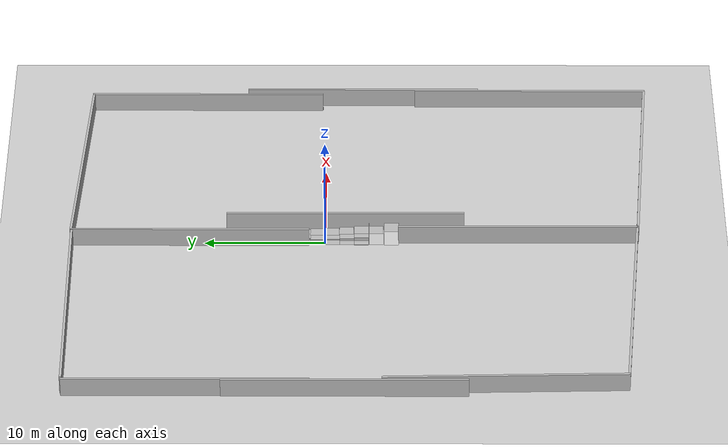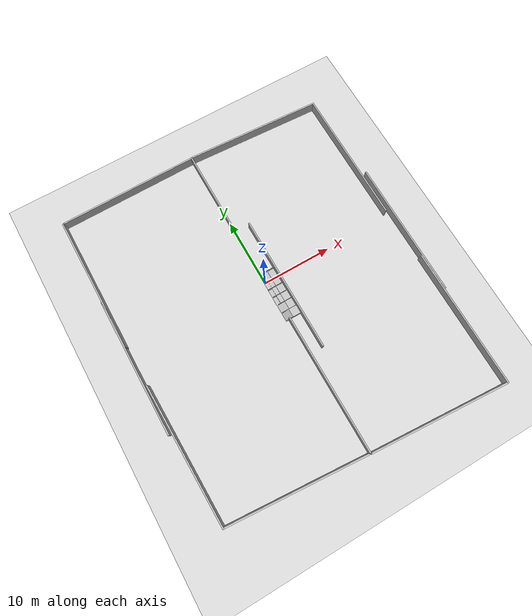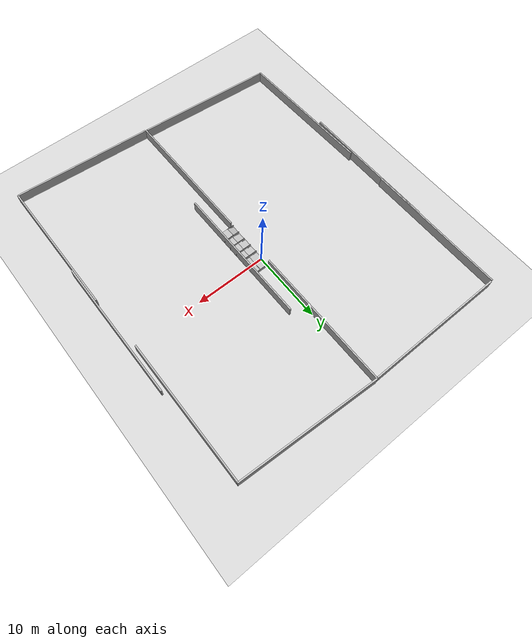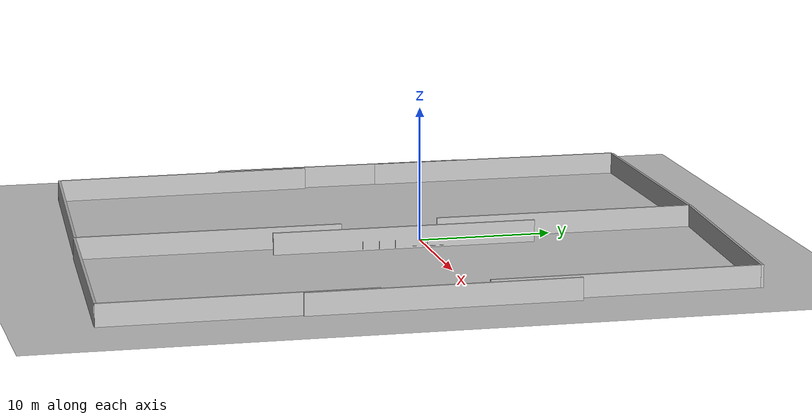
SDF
<sdf version="1.6">
 <world name="default">
  <light name="sun" type="directional">
   <pose>0 0 10 0 -0 0</pose>
   <diffuse>0.8 0.8 0.8 1</diffuse>
   <specular>0.2 0.2 0.2 1</specular>
   <attenuation>
    <range>1000</range>
    <constant>0.9</constant>
    <linear>0.01</linear>
    <quadratic>0.001</quadratic>
   </attenuation>
   <direction>-0.5 0.1 -0.9</direction>
  </light>
  <model name="ground_plane">
   <static>1</static>
   <link name="link">
    <collision name="collision">
     <geometry><plane><normal>0 0 1</normal><size>100 100</size></plane></geometry>
     <surface>
      <contact><collide_bitmask>65535</collide_bitmask></contact>
      <friction><ode><mu>100</mu><mu2>50</mu2></ode></friction>
     </surface>
    </collision>
    <visual name="visual">
     <cast_shadows>0</cast_shadows>
     <geometry><plane><normal>0 0 1</normal><size>100 100</size></plane></geometry>
     <material>
      <script><uri>file://media/materials/scripts/gazebo.material</uri><name>Gazebo/Grey</name></script>
     </material>
    </visual>
   </link>
  </model>
  <gravity>0 0 -9.8</gravity>
  <magnetic_field>6e-06 2.3e-05 -4.2e-05</magnetic_field>
  <atmosphere type="adiabatic"/>
  <physics name="default_physics" default="0" type="ode">
   <max_step_size>0.001</max_step_size>
   <real_time_factor>1</real_time_factor>
   <real_time_update_rate>1000</real_time_update_rate>
  </physics>
  <scene><ambient>0.4 0.4 0.4 1</ambient><background>0.7 0.7 0.7 1</background><shadows>1</shadows></scene>
  <audio><device>default</device></audio>
  <spherical_coordinates>
   <surface_model>EARTH_WGS84</surface_model>
   <latitude_deg>0</latitude_deg>
   <longitude_deg>0</longitude_deg>
   <elevation>0</elevation>
   <heading_deg>0</heading_deg>
  </spherical_coordinates>
  <model name="Step5">
   <static>1</static>
   <link name="link">
    <gravity>0</gravity>
    <collision name="collision">
     <geometry><mesh><scale>1 1 1</scale><uri>model://step_5/meshes/step5.dae</uri></mesh></geometry>
    </collision>
    <visual name="visual">
     <geometry><mesh><scale>1 1 1</scale><uri>model://step_5/meshes/step5.dae</uri></mesh></geometry>
    </visual>
   </link>
   <pose>-0.143407 0.058426 0 0 -0 0</pose>
  </model>
  <model name="NistWallHalf">
   <static>1</static>
   <link name="link">
    <gravity>0</gravity>
    <collision name="collision">
     <geometry>
      <mesh><scale>1 1 1</scale><uri>model://nist_wall_half/meshes/nistwallhalf.dae</uri></mesh>
     </geometry>
    </collision>
    <visual name="visual">
     <geometry>
      <mesh><scale>1 1 1</scale><uri>model://nist_wall_half/meshes/nistwallhalf.dae</uri></mesh>
     </geometry>
    </visual>
   </link>
   <pose>-0.141137 0.036252 0 0 -0 0</pose>
  </model>
  <model name="NistWallHalf_0">
   <static>1</static>
   <link name="link">
    <gravity>0</gravity>
    <collision name="collision">
     <geometry>
      <mesh><scale>1 1 1</scale><uri>model://nist_wall_half/meshes/nistwallhalf.dae</uri></mesh>
     </geometry>
    </collision>
    <visual name="visual">
     <geometry>
      <mesh><scale>1 1 1</scale><uri>model://nist_wall_half/meshes/nistwallhalf.dae</uri></mesh>
     </geometry>
    </visual>
   </link>
   <pose>-0.154715 1.28003 0 0 -0 0</pose>
  </model>
  <model name="Step10">
   <static>1</static>
   <link name="link">
    <gravity>0</gravity>
    <collision name="collision">
     <geometry><mesh><scale>1 1 1</scale><uri>model://step_10/meshes/step10.dae</uri></mesh></geometry>
    </collision>
    <visual name="visual">
     <geometry><mesh><scale>1 1 1</scale><uri>model://step_10/meshes/step10.dae</uri></mesh></geometry>
    </visual>
   </link>
   <pose>-0.157977 -1.16584 0 0 -0 0</pose>
  </model>
  <model name="NistWallHalf_1">
   <static>1</static>
   <link name="link">
    <gravity>0</gravity>
    <collision name="collision">
     <geometry>
      <mesh><scale>1 1 1</scale><uri>model://nist_wall_half/meshes/nistwallhalf.dae</uri></mesh>
     </geometry>
    </collision>
    <visual name="visual">
     <geometry>
      <mesh><scale>1 1 1</scale><uri>model://nist_wall_half/meshes/nistwallhalf.dae</uri></mesh>
     </geometry>
    </visual>
   </link>
   <pose>-0.178529 -1.1691 0 0 -0 0</pose>
  </model>
  <model name="Step20">
   <static>1</static>
   <link name="link">
    <gravity>0</gravity>
    <collision name="collision">
     <geometry><mesh><scale>1 1 1</scale><uri>model://step_20/meshes/step20.dae</uri></mesh></geometry>
    </collision>
    <visual name="visual">
     <geometry><mesh><scale>1 1 1</scale><uri>model://step_20/meshes/step20.dae</uri></mesh></geometry>
    </visual>
   </link>
   <pose>-0.177283 -2.37476 0 0 -0 0</pose>
  </model>
  <model name="NistWallHalf_2">
   <static>1</static>
   <link name="link">
    <gravity>0</gravity>
    <collision name="collision">
     <geometry>
      <mesh><scale>1 1 1</scale><uri>model://nist_wall_half/meshes/nistwallhalf.dae</uri></mesh>
     </geometry>
    </collision>
    <visual name="visual">
     <geometry>
      <mesh><scale>1 1 1</scale><uri>model://nist_wall_half/meshes/nistwallhalf.dae</uri></mesh>
     </geometry>
    </visual>
   </link>
   <pose>-0.135273 -2.3766 0 0 -0 0</pose>
  </model>
  <model name="Step30">
   <static>1</static>
   <link name="link">
    <gravity>0</gravity>
    <collision name="collision">
     <geometry><mesh><scale>1 1 1</scale><uri>model://step_30/meshes/step30.dae</uri></mesh></geometry>
    </collision>
    <visual name="visual">
     <geometry><mesh><scale>1 1 1</scale><uri>model://step_30/meshes/step30.dae</uri></mesh></geometry>
    </visual>
   </link>
   <pose>-0.200414 -3.57318 0 0 -0 0</pose>
  </model>
  <model name="NistWallHalf_3">
   <static>1</static>
   <link name="link">
    <gravity>0</gravity>
    <collision name="collision">
     <geometry>
      <mesh><scale>1 1 1</scale><uri>model://nist_wall_half/meshes/nistwallhalf.dae</uri></mesh>
     </geometry>
    </collision>
    <visual name="visual">
     <geometry>
      <mesh><scale>1 1 1</scale><uri>model://nist_wall_half/meshes/nistwallhalf.dae</uri></mesh>
     </geometry>
    </visual>
   </link>
   <pose>-0.067534 -3.60429 0 0 -0 0</pose>
  </model>
  <model name="Ramp15Deg">
   <static>1</static>
   <link name="link">
    <gravity>0</gravity>
    <collision name="collision">
     <geometry><mesh><scale>1 1 1</scale><uri>model://ramp_15/meshes/nist15.dae</uri></mesh></geometry>
    </collision>
    <visual name="visual">
     <geometry><mesh><scale>1 1 1</scale><uri>model://ramp_15/meshes/nist15.dae</uri></mesh></geometry>
    </visual>
   </link>
   <pose>-0.18504 -4.80329 0 0 -0 0</pose>
  </model>
  <model name="Ramp30Deg">
   <static>1</static>
   <link name="link">
    <gravity>0</gravity>
    <collision name="collision">
     <geometry><mesh><scale>1 1 1</scale><uri>model://ramp_30/meshes/nist30.dae</uri></mesh></geometry>
    </collision>
    <visual name="visual">
     <geometry><mesh><scale>1 1 1</scale><uri>model://ramp_30/meshes/nist30.dae</uri></mesh></geometry>
    </visual>
   </link>
   <pose>-0.19532 -6.05454 0 0 -0 0</pose>
  </model>
  <model name="NistWallHalf_4">
   <static>1</static>
   <link name="link">
    <gravity>0</gravity>
    <collision name="collision">
     <geometry>
      <mesh><scale>1 1 1</scale><uri>model://nist_wall_half/meshes/nistwallhalf.dae</uri></mesh>
     </geometry>
    </collision>
    <visual name="visual">
     <geometry>
      <mesh><scale>1 1 1</scale><uri>model://nist_wall_half/meshes/nistwallhalf.dae</uri></mesh>
     </geometry>
    </visual>
   </link>
   <pose>-0.101038 -4.83645 0 0 -0 0</pose>
  </model>
  <model name="Plate120">
   <static>1</static>
   <link name="link">
    <gravity>0</gravity>
    <collision name="collision">
     <geometry><mesh><scale>1 1 1</scale><uri>model://plate_120/meshes/plate120.dae</uri></mesh></geometry>
    </collision>
    <visual name="visual">
     <geometry><mesh><scale>1 1 1</scale><uri>model://plate_120/meshes/plate120.dae</uri></mesh></geometry>
    </visual>
   </link>
   <pose>0.979844 -4.76738 0.312271 0 -0 0</pose>
  </model>
  <model name="Plate120_0">
   <static>1</static>
   <link name="link">
    <gravity>0</gravity>
    <collision name="collision">
     <geometry><mesh><scale>1 1 1</scale><uri>model://plate_120/meshes/plate120.dae</uri></mesh></geometry>
    </collision>
    <visual name="visual">
     <geometry><mesh><scale>1 1 1</scale><uri>model://plate_120/meshes/plate120.dae</uri></mesh></geometry>
    </visual>
   </link>
   <pose>0.991833 -3.58152 0.311069 0 -0 0</pose>
  </model>
  <model name="Plate120_1">
   <static>1</static>
   <link name="link">
    <gravity>0</gravity>
    <collision name="collision">
     <geometry><mesh><scale>1 1 1</scale><uri>model://plate_120/meshes/plate120.dae</uri></mesh></geometry>
    </collision>
    <visual name="visual">
     <geometry><mesh><scale>1 1 1</scale><uri>model://plate_120/meshes/plate120.dae</uri></mesh></geometry>
    </visual>
   </link>
   <pose>1.01251 -2.34374 0.207368 0 -0 0</pose>
  </model>
  <model name="Plate120_2">
   <static>1</static>
   <link name="link">
    <gravity>0</gravity>
    <collision name="collision">
     <geometry><mesh><scale>1 1 1</scale><uri>model://plate_120/meshes/plate120.dae</uri></mesh></geometry>
    </collision>
    <visual name="visual">
     <geometry><mesh><scale>1 1 1</scale><uri>model://plate_120/meshes/plate120.dae</uri></mesh></geometry>
    </visual>
   </link>
   <pose>1.05249 -1.13956 0.089515 0 -0 0</pose>
  </model>
  <model name="Plate120_3">
   <static>1</static>
   <link name="link">
    <gravity>0</gravity>
    <collision name="collision">
     <geometry><mesh><scale>1 1 1</scale><uri>model://plate_120/meshes/plate120.dae</uri></mesh></geometry>
    </collision>
    <visual name="visual">
     <geometry><mesh><scale>1 1 1</scale><uri>model://plate_120/meshes/plate120.dae</uri></mesh></geometry>
    </visual>
   </link>
   <pose>1.08323 0.067286 0.057155 0 -0 0</pose>
  </model>
  <model name="Plate120_4">
   <static>1</static>
   <link name="link">
    <gravity>0</gravity>
    <collision name="collision">
     <geometry><mesh><scale>1 1 1</scale><uri>model://plate_120/meshes/plate120.dae</uri></mesh></geometry>
    </collision>
    <visual name="visual">
     <geometry><mesh><scale>1 1 1</scale><uri>model://plate_120/meshes/plate120.dae</uri></mesh></geometry>
    </visual>
   </link>
   <pose>0.847181 -6.05883 0.585689 0 -0 0</pose>
  </model>
  <model name="NistWallHalf_5">
   <static>1</static>
   <link name="link">
    <gravity>0</gravity>
    <collision name="collision">
     <geometry>
      <mesh><scale>1 1 1</scale><uri>model://nist_wall_half/meshes/nistwallhalf.dae</uri></mesh>
     </geometry>
    </collision>
    <visual name="visual">
     <geometry>
      <mesh><scale>1 1 1</scale><uri>model://nist_wall_half/meshes/nistwallhalf.dae</uri></mesh>
     </geometry>
    </visual>
   </link>
   <pose>-0.178522 -6.06976 0 0 -0 0</pose>
  </model>
  <model name="Wall">
   <static>1</static>
   <link name="link">
    <inertial>
     <pose>0 0 0.4 0 -0 0</pose>
     <mass>500</mass>
     <inertia><ixx>51.2096</ixx><iyy>51.2096</iyy><izz>25</izz><ixy>0</ixy><ixz>0</ixz><iyz>0</iyz></inertia>
    </inertial>
    <collision name="collision">
     <geometry><mesh><scale>1 1 1</scale><uri>model://wall/meshes/wall.dae</uri></mesh></geometry>
    </collision>
    <visual name="visual">
     <geometry><mesh><scale>1 1 1</scale><uri>model://wall/meshes/wall.dae</uri></mesh></geometry>
    </visual>
   </link>
   <pose>-0.092208 11.2183 0 0 -0 0</pose>
  </model>
  <model name="Wall_0">
   <static>1</static>
   <link name="link">
    <inertial>
     <pose>0 0 0.4 0 -0 0</pose>
     <mass>500</mass>
     <inertia><ixx>51.2096</ixx><iyy>51.2096</iyy><izz>25</izz><ixy>0</ixy><ixz>0</ixz><iyz>0</iyz></inertia>
    </inertial>
    <collision name="collision">
     <geometry><mesh><scale>1 1 1</scale><uri>model://wall/meshes/wall.dae</uri></mesh></geometry>
    </collision>
    <visual name="visual">
     <geometry><mesh><scale>1 1 1</scale><uri>model://wall/meshes/wall.dae</uri></mesh></geometry>
    </visual>
   </link>
   <pose>0.272403 -15.9182 0 0 -0 0</pose>
  </model>
  <model name="Wall_1">
   <static>1</static>
   <link name="link">
    <inertial>
     <pose>0 0 0.4 0 -0 0</pose>
     <mass>500</mass>
     <inertia><ixx>51.2096</ixx><iyy>51.2096</iyy><izz>25</izz><ixy>0</ixy><ixz>0</ixz><iyz>0</iyz></inertia>
    </inertial>
    <collision name="collision">
     <geometry><mesh><scale>1 1 1</scale><uri>model://wall/meshes/wall.dae</uri></mesh></geometry>
    </collision>
    <visual name="visual">
     <geometry><mesh><scale>1 1 1</scale><uri>model://wall/meshes/wall.dae</uri></mesh></geometry>
    </visual>
   </link>
   <pose>10.1914 -26.5745 0 0 0 -1.6408</pose>
  </model>
  <model name="Wall_2">
   <static>1</static>
   <link name="link">
    <inertial>
     <pose>0 0 0.4 0 -0 0</pose>
     <mass>500</mass>
     <inertia><ixx>51.2096</ixx><iyy>51.2096</iyy><izz>25</izz><ixy>0</ixy><ixz>0</ixz><iyz>0</iyz></inertia>
    </inertial>
    <collision name="collision">
     <geometry><mesh><scale>1 1 1</scale><uri>model://wall/meshes/wall.dae</uri></mesh></geometry>
    </collision>
    <visual name="visual">
     <geometry><mesh><scale>1 1 1</scale><uri>model://wall/meshes/wall.dae</uri></mesh></geometry>
    </visual>
   </link>
   <pose>20.0674 -17.4416 0 0 -0 0</pose>
  </model>
  <model name="Wall_3">
   <static>1</static>
   <link name="link">
    <inertial>
     <pose>0 0 0.4 0 -0 0</pose>
     <mass>500</mass>
     <inertia><ixx>51.2096</ixx><iyy>51.2096</iyy><izz>25</izz><ixy>0</ixy><ixz>0</ixz><iyz>0</iyz></inertia>
    </inertial>
    <collision name="collision">
     <geometry><mesh><scale>1 1 1</scale><uri>model://wall/meshes/wall.dae</uri></mesh></geometry>
    </collision>
    <visual name="visual">
     <geometry><mesh><scale>1 1 1</scale><uri>model://wall/meshes/wall.dae</uri></mesh></geometry>
    </visual>
   </link>
   <pose>19.5376 10.2085 0 0 -0 0</pose>
  </model>
  <model name="Wall_4">
   <static>1</static>
   <link name="link">
    <inertial>
     <pose>0 0 0.4 0 -0 0</pose>
     <mass>500</mass>
     <inertia><ixx>51.2096</ixx><iyy>51.2096</iyy><izz>25</izz><ixy>0</ixy><ixz>0</ixz><iyz>0</iyz></inertia>
    </inertial>
    <collision name="collision">
     <geometry><mesh><scale>1 1 1</scale><uri>model://wall/meshes/wall.dae</uri></mesh></geometry>
    </collision>
    <visual name="visual">
     <geometry><mesh><scale>1 1 1</scale><uri>model://wall/meshes/wall.dae</uri></mesh></geometry>
    </visual>
   </link>
   <pose>9.77902 20.5558 0 0 -0 1.51939</pose>
  </model>
  <model name="Wall_5">
   <static>1</static>
   <link name="link">
    <inertial>
     <pose>0 0 0.4 0 -0 0</pose>
     <mass>500</mass>
     <inertia><ixx>51.2096</ixx><iyy>51.2096</iyy><izz>25</izz><ixy>0</ixy><ixz>0</ixz><iyz>0</iyz></inertia>
    </inertial>
    <collision name="collision">
     <geometry><mesh><scale>1 1 1</scale><uri>model://wall/meshes/wall.dae</uri></mesh></geometry>
    </collision>
    <visual name="visual">
     <geometry><mesh><scale>1 1 1</scale><uri>model://wall/meshes/wall.dae</uri></mesh></geometry>
    </visual>
   </link>
   <pose>20.2814 -3.09859 0 0 -0 0</pose>
  </model>
  <model name="Wall_6">
   <static>1</static>
   <link name="link">
    <inertial>
     <pose>0 0 0.4 0 -0 0</pose>
     <mass>500</mass>
     <inertia><ixx>51.2096</ixx><iyy>51.2096</iyy><izz>25</izz><ixy>0</ixy><ixz>0</ixz><iyz>0</iyz></inertia>
    </inertial>
    <collision name="collision">
     <geometry><mesh><scale>1 1 1</scale><uri>model://wall/meshes/wall.dae</uri></mesh></geometry>
    </collision>
    <visual name="visual">
     <geometry><mesh><scale>1 1 1</scale><uri>model://wall/meshes/wall.dae</uri></mesh></geometry>
    </visual>
   </link>
   <pose>-20.1744 11.0213 0 0 -0 0</pose>
  </model>
  <model name="Wall_7">
   <static>1</static>
   <link name="link">
    <inertial>
     <pose>0 0 0.4 0 -0 0</pose>
     <mass>500</mass>
     <inertia><ixx>51.2096</ixx><iyy>51.2096</iyy><izz>25</izz><ixy>0</ixy><ixz>0</ixz><iyz>0</iyz></inertia>
    </inertial>
    <collision name="collision">
     <geometry><mesh><scale>1 1 1</scale><uri>model://wall/meshes/wall.dae</uri></mesh></geometry>
    </collision>
    <visual name="visual">
     <geometry><mesh><scale>1 1 1</scale><uri>model://wall/meshes/wall.dae</uri></mesh></geometry>
    </visual>
   </link>
   <pose>-19.7198 -14.4979 0 0 -0 0.021069</pose>
  </model>
  <model name="Wall_8">
   <static>1</static>
   <link name="link">
    <inertial>
     <pose>0 0 0.4 0 -0 0</pose>
     <mass>500</mass>
     <inertia><ixx>51.2096</ixx><iyy>51.2096</iyy><izz>25</izz><ixy>0</ixy><ixz>0</ixz><iyz>0</iyz></inertia>
    </inertial>
    <collision name="collision">
     <geometry><mesh><scale>1 1 1</scale><uri>model://wall/meshes/wall.dae</uri></mesh></geometry>
    </collision>
    <visual name="visual">
     <geometry><mesh><scale>1 1 1</scale><uri>model://wall/meshes/wall.dae</uri></mesh></geometry>
    </visual>
   </link>
   <pose>-20.2655 -1.66391 0 0 -0 0</pose>
  </model>
  <model name="Wall_9">
   <static>1</static>
   <link name="link">
    <inertial>
     <pose>0 0 0.4 0 -0 0</pose>
     <mass>500</mass>
     <inertia><ixx>51.2096</ixx><iyy>51.2096</iyy><izz>25</izz><ixy>0</ixy><ixz>0</ixz><iyz>0</iyz></inertia>
    </inertial>
    <collision name="collision">
     <geometry><mesh><scale>1 1 1</scale><uri>model://wall/meshes/wall.dae</uri></mesh></geometry>
    </collision>
    <visual name="visual">
     <geometry><mesh><scale>1 1 1</scale><uri>model://wall/meshes/wall.dae</uri></mesh></geometry>
    </visual>
   </link>
   <pose>-9.73395 -25.0459 0 0 -0 1.49281</pose>
  </model>
  <model name="Wall_10">
   <static>1</static>
   <link name="link">
    <inertial>
     <pose>0 0 0.4 0 -0 0</pose>
     <mass>500</mass>
     <inertia><ixx>51.2096</ixx><iyy>51.2096</iyy><izz>25</izz><ixy>0</ixy><ixz>0</ixz><iyz>0</iyz></inertia>
    </inertial>
    <collision name="collision">
     <geometry><mesh><scale>1 1 1</scale><uri>model://wall/meshes/wall.dae</uri></mesh></geometry>
    </collision>
    <visual name="visual">
     <geometry><mesh><scale>1 1 1</scale><uri>model://wall/meshes/wall.dae</uri></mesh></geometry>
    </visual>
   </link>
   <pose>-10.0975 20.9485 0 0 -0 1.57698</pose>
  </model>
  <model name="Wall_11">
   <static>1</static>
   <link name="link">
    <inertial>
     <pose>0 0 0.4 0 -0 0</pose>
     <mass>500</mass>
     <inertia><ixx>51.2096</ixx><iyy>51.2096</iyy><izz>25</izz><ixy>0</ixy><ixz>0</ixz><iyz>0</iyz></inertia>
    </inertial>
    <collision name="collision">
     <geometry><mesh><scale>1 1 1</scale><uri>model://wall/meshes/wall.dae</uri></mesh></geometry>
    </collision>
    <visual name="visual">
     <geometry><mesh><scale>1 1 1</scale><uri>model://wall/meshes/wall.dae</uri></mesh></geometry>
    </visual>
   </link>
   <pose>2.1316 -1.64827 0 0 -0 0</pose>
  </model>
 </world>
</sdf>
